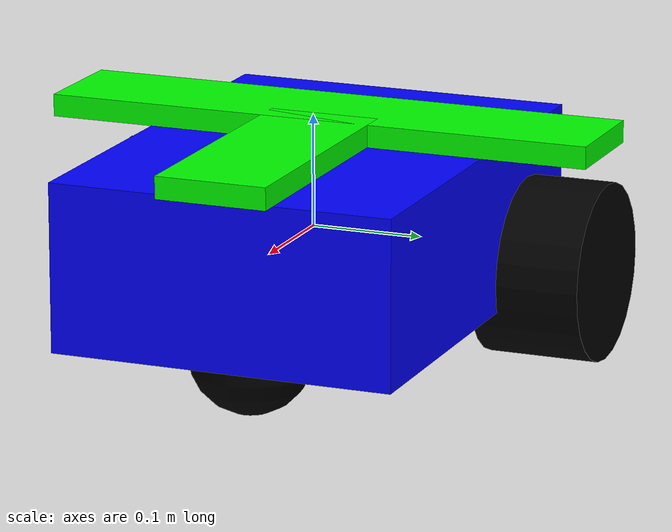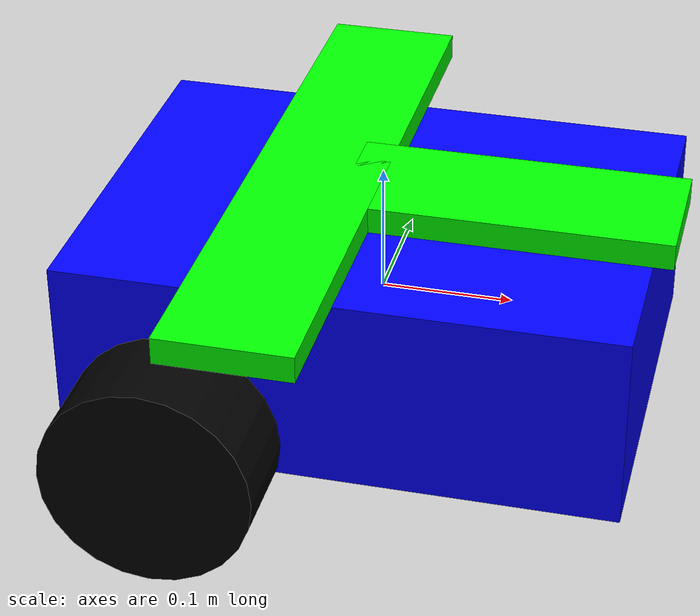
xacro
<?xml version="1.0"?>
<robot name="robot" xmlns:xacro="http://ros.org/wiki/xacro">

  <!-- Define robot constants -->
  <xacro:property name="base_width" value="0.31"/>
  <xacro:property name="base_length" value="0.42"/>
  <xacro:property name="base_height" value="0.15"/>

  <xacro:property name="wheel_radius" value="0.08"/>
  <xacro:property name="wheel_width" value="0.1"/>
  <xacro:property name="wheel_ygap" value="0.025"/>
  <xacro:property name="wheel_zoff" value="0.05"/>
  <xacro:property name="wheel_xoff" value="0.12"/>

  <xacro:property name="caster_xoff" value="0.14"/>

   <!-- Define intertial property macros  -->
  <xacro:macro name="box_inertia" params="m w h d">
    <inertial>
      <origin xyz="0 0 0" rpy="${pi/2} 0 ${pi/2}"/>
      <mass value="${m}"/>
      <inertia ixx="${(m/12) * (h*h + d*d)}" ixy="0.0" ixz="0.0" iyy="${(m/12) * (w*w + d*d)}" iyz="0.0" izz="${(m/12) * (w*w + h*h)}"/>
    </inertial>
  </xacro:macro>

  <xacro:macro name="cylinder_inertia" params="m r h">
    <inertial>
      <origin xyz="0 0 0" rpy="${pi/2} 0 0" />
      <mass value="${m}"/>
      <inertia ixx="${(m/12) * (3*r*r + h*h)}" ixy = "0" ixz = "0" iyy="${(m/12) * (3*r*r + h*h)}" iyz = "0" izz="${(m/2) * (r*r)}"/>
    </inertial>
  </xacro:macro>

  <xacro:macro name="sphere_inertia" params="m r">
    <inertial>
      <mass value="${m}"/>
      <inertia ixx="${(2/5) * m * (r*r)}" ixy="0.0" ixz="0.0" iyy="${(2/5) * m * (r*r)}" iyz="0.0" izz="${(2/5) * m * (r*r)}"/>
    </inertial>
  </xacro:macro>

  <!-- Robot Base -->
  <link name="base_link">
    <visual>
      <geometry>
        <box size="${base_length} ${base_width} ${base_height}"/>
      </geometry>
      <material name="blue">
        <color rgba="0 0 1.0 1.0"/>
      </material>
    </visual>

    <collision>
      <geometry>
        <box size="${base_length} ${base_width} ${base_height}"/>
      </geometry>
    </collision>

    <xacro:box_inertia m="15" w="${base_width}" d="${base_length}" h="${base_height}"/>
  </link>

  <!-- Robot Footprint -->
  <link name="base_footprint"/>

  <joint name="base_joint" type="fixed">
    <parent link="base_link"/>
    <child link="base_footprint"/>
    <origin xyz="0.0 0.0 ${-(wheel_radius+wheel_zoff)}" rpy="0 0 0"/>
  </joint>

  <!-- I AM SPEED start -->
  <!-- T start -->
  <!-- Rectangle on the top of base_link -->
  <link name="head_of_T">
    <visual>
      <geometry>
        <box size="0.1 0.5 0.02"/> <!-- Размеры прямоугольника (высота, ширина, длина) -->
      </geometry>
      <material name="green">
        <color rgba="0.0 1.0 0 1.0"/>
      </material>
    </visual>

    <collision>
      <geometry>
        <box size="0.1 0.5 0.02"/> <!-- Размеры прямоугольника для коллизий -->
      </geometry>
    </collision>

    <!-- Определение инерции прямоугольника -->
    <inertial>
      <origin xyz="0 0 0" rpy="0 0 0"/>
      <mass value="0.1"/> <!-- Масса прямоугольника -->
      <inertia ixx="0.001" ixy="0.0" ixz="0.0" iyy="0.001" iyz="0.0" izz="0.001"/> <!-- Моменты инерции -->
    </inertial>
  </link>

  <!-- Joint to connect top_rectangle_link to base_link -->
  <joint name="head_of_T_joint" type="fixed">
    <parent link="base_link"/>
    <child link="head_of_T"/>
    <origin xyz="-0.05 0.0 ${base_height/2 + 0.01}" rpy="0 0 0"/> <!-- Высота прямоугольника относительно base_link -->
  </joint>

    <!-- Rectangle at a 90 degree -->
  <link name="angled_rectangle_link_1">
    <visual>
      <geometry>
        <box size="0.25 0.1 0.02"/> <!-- Размеры прямоугольника (высота, ширина, длина) -->
      </geometry>
      <material name="green">
        <color rgba="0 1.0 0 1.0"/>
      </material>
    </visual>

    <collision>
      <geometry>
        <box size="0.25 0.1 0.02"/> <!-- Размеры прямоугольника для коллизий -->
      </geometry>
    </collision>

    <!-- Определение инерции прямоугольника -->
    <inertial>
      <origin xyz="0 0 0" rpy="0 0 0"/>
      <mass value="0.1"/> <!-- Масса прямоугольника -->
      <inertia ixx="0.001" ixy="0.0" ixz="0.0" iyy="0.001" iyz="0.0" izz="0.001"/> <!-- Моменты инерции -->
    </inertial>
  </link>

  <!-- Joint to connect angled_rectangle_link_1 to base_link at a 45-degree angle -->
  <joint name="angled_rectangle_joint_1" type="fixed">
    <parent link="base_link"/>
    <child link="angled_rectangle_link_1"/>
    <origin xyz="0.1 0 ${base_height/2 + 0.01}" rpy="0 0 0"/>
    <axis xyz="1 0 0"/> <!-- Ось вращения вдоль z-оси (вертикальная ось) -->
  </joint>

  <!-- T end -->

  <!-- I AM SPEED end-->

  <!-- Wheels -->
  <xacro:macro name="wheel" params="prefix x_reflect y_reflect">
    <link name="${prefix}_link">
      <visual>
        <origin xyz="0 0 0" rpy="${pi/2} 0 0"/>
        <geometry>
            <cylinder radius="${wheel_radius}" length="${wheel_width}"/>
        </geometry>
        <material name="Black">
          <color rgba="0 0 0 1.0"/>
        </material>
      </visual>

      <collision>
        <origin xyz="0 0 0" rpy="${pi/2} 0 0"/>
        <geometry>
          <cylinder radius="${wheel_radius}" length="${wheel_width}"/>
        </geometry>
      </collision>

      <xacro:cylinder_inertia m="0.5" r="${wheel_radius}" h="${wheel_width}"/>
    </link>

    <joint name="${prefix}_joint" type="continuous">
      <parent link="base_link"/>
      <child link="${prefix}_link"/>
      <origin xyz="${x_reflect*wheel_xoff} ${y_reflect*(base_width/2+wheel_ygap)} ${-wheel_zoff}" rpy="0 0 0"/>
      <axis xyz="0 1 0"/>
    </joint>
  </xacro:macro>

  <xacro:wheel prefix="drivewhl_l" x_reflect="-1" y_reflect="1" />
  <xacro:wheel prefix="drivewhl_r" x_reflect="-1" y_reflect="-1" />

  <!-- Caster Wheel -->
  <link name="front_caster">
    <visual>
      <geometry>
        <sphere radius="${(wheel_radius+wheel_zoff-(base_height/2))}"/>
      </geometry>
      <material name="Black">
          <color rgba="0 0 0 1.0"/>
        </material>
    </visual>

    <collision>
      <origin xyz="0 0 0" rpy="0 0 0"/>
      <geometry>
        <sphere radius="${(wheel_radius+wheel_zoff-(base_height/2))}"/>
      </geometry>
    </collision>

    <xacro:sphere_inertia m="0.5" r="${(wheel_radius+wheel_zoff-(base_height/2))}"/>

  </link>

  <joint name="caster_joint" type="fixed">
    <parent link="base_link"/>
    <child link="front_caster"/>
    <origin xyz="${caster_xoff} 0.0 ${-(base_height/2)}" rpy="0 0 0"/>
  </joint>

</robot>
